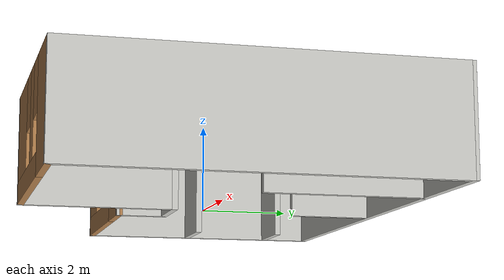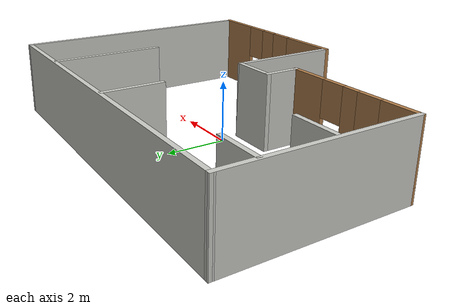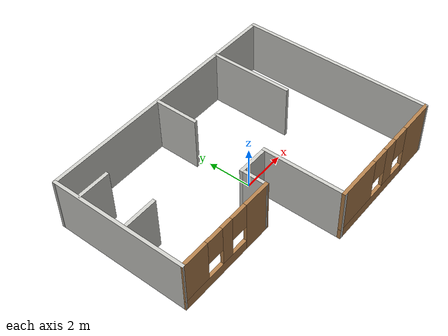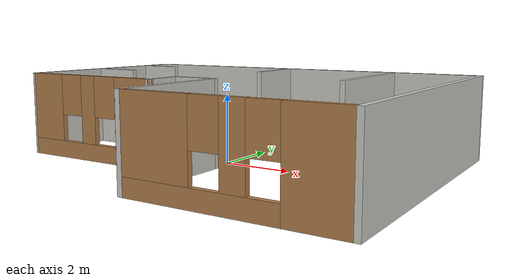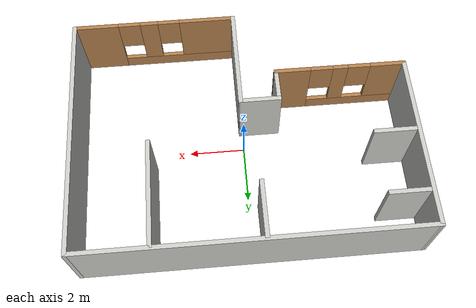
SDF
<?xml version='1.0'?>
<sdf version='1.6'>
  <model name='Building'>
    <link name='Wall_26'>
      <pose frame=''>-0.000176 4.29996 0 0 0 -0.000586</pose>
      <self_collide>0</self_collide>
      <kinematic>0</kinematic>
      <visual name='Wall_26_Visual'>
        <pose frame=''>0 0 1.25 0 -0 0</pose>
        <geometry>
          <box>
            <size>11.9548 0.15 2.5</size>
          </box>
        </geometry>
        <material>
          <script>
            <uri>file://media/materials/scripts/gazebo.material</uri>
            <name>Gazebo/CeilingTiled</name>
          </script>
          <ambient>1 1 1 1</ambient>
          <shader type='pixel'/>
          <diffuse>1 1 1 1</diffuse>
          <specular>0 0 0 1</specular>
          <emissive>0 0 0 1</emissive>
        </material>
        <meta>
          <layer>0</layer>
        </meta>
        <transparency>0</transparency>
        <cast_shadows>1</cast_shadows>
      </visual>
      <collision name='Wall_26_Collision'>
        <laser_retro>0</laser_retro>
        <max_contacts>10</max_contacts>
        <pose frame=''>0 0 1.25 0 -0 0</pose>
        <geometry>
          <box>
            <size>11.9548 0.15 2.5</size>
          </box>
        </geometry>
        <surface>
          <friction>
            <ode>
              <mu>1</mu>
              <mu2>1</mu2>
              <fdir1>0 0 0</fdir1>
              <slip1>0</slip1>
              <slip2>0</slip2>
            </ode>
            <torsional>
              <coefficient>1</coefficient>
              <patch_radius>0</patch_radius>
              <surface_radius>0</surface_radius>
              <use_patch_radius>1</use_patch_radius>
              <ode>
                <slip>0</slip>
              </ode>
            </torsional>
          </friction>
          <bounce>
            <restitution_coefficient>0</restitution_coefficient>
            <threshold>1e+06</threshold>
          </bounce>
          <contact>
            <collide_without_contact>0</collide_without_contact>
            <collide_without_contact_bitmask>1</collide_without_contact_bitmask>
            <collide_bitmask>1</collide_bitmask>
            <ode>
              <soft_cfm>0</soft_cfm>
              <soft_erp>0.2</soft_erp>
              <kp>1e+13</kp>
              <kd>1</kd>
              <max_vel>0.01</max_vel>
              <min_depth>0</min_depth>
            </ode>
            <bullet>
              <split_impulse>1</split_impulse>
              <split_impulse_penetration_threshold>-0.01</split_impulse_penetration_threshold>
              <soft_cfm>0</soft_cfm>
              <soft_erp>0.2</soft_erp>
              <kp>1e+13</kp>
              <kd>1</kd>
            </bullet>
          </contact>
        </surface>
      </collision>
    </link>
    <link name='Wall_27'>
      <pose frame=''>5.90246 -0.003458 0 0 0 -1.57074</pose>
      <self_collide>0</self_collide>
      <kinematic>0</kinematic>
      <visual name='Wall_27_Visual'>
        <pose frame=''>0 0 1.25 0 -0 0</pose>
        <geometry>
          <box>
            <size>8.75 0.15 2.5</size>
          </box>
        </geometry>
        <material>
          <script>
            <uri>file://media/materials/scripts/gazebo.material</uri>
            <name>Gazebo/CeilingTiled</name>
          </script>
          <ambient>1 1 1 1</ambient>
          <shader type='pixel'/>
          <diffuse>1 1 1 1</diffuse>
          <specular>0 0 0 1</specular>
          <emissive>0 0 0 1</emissive>
        </material>
        <meta>
          <layer>0</layer>
        </meta>
        <transparency>0</transparency>
        <cast_shadows>1</cast_shadows>
      </visual>
      <collision name='Wall_27_Collision'>
        <laser_retro>0</laser_retro>
        <max_contacts>10</max_contacts>
        <pose frame=''>0 0 1.25 0 -0 0</pose>
        <geometry>
          <box>
            <size>8.75 0.15 2.5</size>
          </box>
        </geometry>
        <surface>
          <friction>
            <ode>
              <mu>1</mu>
              <mu2>1</mu2>
              <fdir1>0 0 0</fdir1>
              <slip1>0</slip1>
              <slip2>0</slip2>
            </ode>
            <torsional>
              <coefficient>1</coefficient>
              <patch_radius>0</patch_radius>
              <surface_radius>0</surface_radius>
              <use_patch_radius>1</use_patch_radius>
              <ode>
                <slip>0</slip>
              </ode>
            </torsional>
          </friction>
          <bounce>
            <restitution_coefficient>0</restitution_coefficient>
            <threshold>1e+06</threshold>
          </bounce>
          <contact>
            <collide_without_contact>0</collide_without_contact>
            <collide_without_contact_bitmask>1</collide_without_contact_bitmask>
            <collide_bitmask>1</collide_bitmask>
            <ode>
              <soft_cfm>0</soft_cfm>
              <soft_erp>0.2</soft_erp>
              <kp>1e+13</kp>
              <kd>1</kd>
              <max_vel>0.01</max_vel>
              <min_depth>0</min_depth>
            </ode>
            <bullet>
              <split_impulse>1</split_impulse>
              <split_impulse_penetration_threshold>-0.01</split_impulse_penetration_threshold>
              <soft_cfm>0</soft_cfm>
              <soft_erp>0.2</soft_erp>
              <kp>1e+13</kp>
              <kd>1</kd>
            </bullet>
          </contact>
        </surface>
      </collision>
    </link>
    <link name='Wall_28'>
      <pose frame=''>2.97769 -4.30342 0 0 -0 3.14159</pose>
      <self_collide>0</self_collide>
      <kinematic>0</kinematic>
      <visual name='Wall_28_Visual_0'>
        <pose frame=''>-2.16132 0 1.25 0 -0 0</pose>
        <geometry>
          <box>
            <size>1.67735 0.15 2.5</size>
          </box>
        </geometry>
        <material>
          <script>
            <uri>file://media/materials/scripts/gazebo.material</uri>
            <name>Gazebo/Wood</name>
          </script>
          <ambient>1 1 1 1</ambient>
          <shader type='pixel'/>
          <diffuse>1 1 1 1</diffuse>
          <specular>0.2 0.2 0.2 1</specular>
          <emissive>0 0 0 1</emissive>
        </material>
        <meta>
          <layer>0</layer>
        </meta>
        <transparency>0</transparency>
        <cast_shadows>1</cast_shadows>
      </visual>
      <visual name='Wall_28_Visual_1'>
        <pose frame=''>0.838676 0 0.25 0 -0 0</pose>
        <geometry>
          <box>
            <size>4.32265 0.15 0.5</size>
          </box>
        </geometry>
        <material>
          <script>
            <uri>file://media/materials/scripts/gazebo.material</uri>
            <name>Gazebo/Wood</name>
          </script>
          <ambient>1 1 1 1</ambient>
          <shader type='pixel'/>
          <diffuse>1 1 1 1</diffuse>
          <specular>0.2 0.2 0.2 1</specular>
          <emissive>0 0 0 1</emissive>
        </material>
        <meta>
          <layer>0</layer>
        </meta>
        <transparency>0</transparency>
        <cast_shadows>1</cast_shadows>
      </visual>
      <visual name='Wall_28_Visual_2'>
        <pose frame=''>-0.194936 0 1.5 0 -0 0</pose>
        <geometry>
          <box>
            <size>0.655424 0.15 2</size>
          </box>
        </geometry>
        <material>
          <script>
            <uri>file://media/materials/scripts/gazebo.material</uri>
            <name>Gazebo/Wood</name>
          </script>
          <ambient>1 1 1 1</ambient>
          <shader type='pixel'/>
          <diffuse>1 1 1 1</diffuse>
          <specular>0.2 0.2 0.2 1</specular>
          <emissive>0 0 0 1</emissive>
        </material>
        <meta>
          <layer>0</layer>
        </meta>
        <transparency>0</transparency>
        <cast_shadows>1</cast_shadows>
      </visual>
      <visual name='Wall_28_Visual_3'>
        <pose frame=''>1.96639 0 1.5 0 -0 0</pose>
        <geometry>
          <box>
            <size>2.06722 0.15 2</size>
          </box>
        </geometry>
        <material>
          <script>
            <uri>file://media/materials/scripts/gazebo.material</uri>
            <name>Gazebo/Wood</name>
          </script>
          <ambient>1 1 1 1</ambient>
          <shader type='pixel'/>
          <diffuse>1 1 1 1</diffuse>
          <specular>0.2 0.2 0.2 1</specular>
          <emissive>0 0 0 1</emissive>
        </material>
        <meta>
          <layer>0</layer>
        </meta>
        <transparency>0</transparency>
        <cast_shadows>1</cast_shadows>
      </visual>
      <visual name='Wall_28_Visual_4'>
        <pose frame=''>-0.922648 0 1.9 0 -0 0</pose>
        <geometry>
          <box>
            <size>0.8 0.15 1.2</size>
          </box>
        </geometry>
        <material>
          <script>
            <uri>file://media/materials/scripts/gazebo.material</uri>
            <name>Gazebo/Wood</name>
          </script>
          <ambient>1 1 1 1</ambient>
          <shader type='pixel'/>
          <diffuse>1 1 1 1</diffuse>
          <specular>0.2 0.2 0.2 1</specular>
          <emissive>0 0 0 1</emissive>
        </material>
        <meta>
          <layer>0</layer>
        </meta>
        <transparency>0</transparency>
        <cast_shadows>1</cast_shadows>
      </visual>
      <visual name='Wall_28_Visual_5'>
        <pose frame=''>0.532776 0 1.9 0 -0 0</pose>
        <geometry>
          <box>
            <size>0.8 0.15 1.2</size>
          </box>
        </geometry>
        <material>
          <script>
            <uri>file://media/materials/scripts/gazebo.material</uri>
            <name>Gazebo/Wood</name>
          </script>
          <ambient>1 1 1 1</ambient>
          <shader type='pixel'/>
          <diffuse>1 1 1 1</diffuse>
          <specular>0.2 0.2 0.2 1</specular>
          <emissive>0 0 0 1</emissive>
        </material>
        <meta>
          <layer>0</layer>
        </meta>
        <transparency>0</transparency>
        <cast_shadows>1</cast_shadows>
      </visual>
      <collision name='Wall_28_Collision_0'>
        <laser_retro>0</laser_retro>
        <max_contacts>10</max_contacts>
        <pose frame=''>-2.16132 0 1.25 0 -0 0</pose>
        <geometry>
          <box>
            <size>1.67735 0.15 2.5</size>
          </box>
        </geometry>
        <surface>
          <friction>
            <ode>
              <mu>1</mu>
              <mu2>1</mu2>
              <fdir1>0 0 0</fdir1>
              <slip1>0</slip1>
              <slip2>0</slip2>
            </ode>
            <torsional>
              <coefficient>1</coefficient>
              <patch_radius>0</patch_radius>
              <surface_radius>0</surface_radius>
              <use_patch_radius>1</use_patch_radius>
              <ode>
                <slip>0</slip>
              </ode>
            </torsional>
          </friction>
          <bounce>
            <restitution_coefficient>0</restitution_coefficient>
            <threshold>1e+06</threshold>
          </bounce>
          <contact>
            <collide_without_contact>0</collide_without_contact>
            <collide_without_contact_bitmask>1</collide_without_contact_bitmask>
            <collide_bitmask>1</collide_bitmask>
            <ode>
              <soft_cfm>0</soft_cfm>
              <soft_erp>0.2</soft_erp>
              <kp>1e+13</kp>
              <kd>1</kd>
              <max_vel>0.01</max_vel>
              <min_depth>0</min_depth>
            </ode>
            <bullet>
              <split_impulse>1</split_impulse>
              <split_impulse_penetration_threshold>-0.01</split_impulse_penetration_threshold>
              <soft_cfm>0</soft_cfm>
              <soft_erp>0.2</soft_erp>
              <kp>1e+13</kp>
              <kd>1</kd>
            </bullet>
          </contact>
        </surface>
      </collision>
      <collision name='Wall_28_Collision_1'>
        <laser_retro>0</laser_retro>
        <max_contacts>10</max_contacts>
        <pose frame=''>0.838676 0 0.25 0 -0 0</pose>
        <geometry>
          <box>
            <size>4.32265 0.15 0.5</size>
          </box>
        </geometry>
        <surface>
          <friction>
            <ode>
              <mu>1</mu>
              <mu2>1</mu2>
              <fdir1>0 0 0</fdir1>
              <slip1>0</slip1>
              <slip2>0</slip2>
            </ode>
            <torsional>
              <coefficient>1</coefficient>
              <patch_radius>0</patch_radius>
              <surface_radius>0</surface_radius>
              <use_patch_radius>1</use_patch_radius>
              <ode>
                <slip>0</slip>
              </ode>
            </torsional>
          </friction>
          <bounce>
            <restitution_coefficient>0</restitution_coefficient>
            <threshold>1e+06</threshold>
          </bounce>
          <contact>
            <collide_without_contact>0</collide_without_contact>
            <collide_without_contact_bitmask>1</collide_without_contact_bitmask>
            <collide_bitmask>1</collide_bitmask>
            <ode>
              <soft_cfm>0</soft_cfm>
              <soft_erp>0.2</soft_erp>
              <kp>1e+13</kp>
              <kd>1</kd>
              <max_vel>0.01</max_vel>
              <min_depth>0</min_depth>
            </ode>
            <bullet>
              <split_impulse>1</split_impulse>
              <split_impulse_penetration_threshold>-0.01</split_impulse_penetration_threshold>
              <soft_cfm>0</soft_cfm>
              <soft_erp>0.2</soft_erp>
              <kp>1e+13</kp>
              <kd>1</kd>
            </bullet>
          </contact>
        </surface>
      </collision>
      <collision name='Wall_28_Collision_3'>
        <laser_retro>0</laser_retro>
        <max_contacts>10</max_contacts>
        <pose frame=''>1.96639 0 1.5 0 -0 0</pose>
        <geometry>
          <box>
            <size>2.06722 0.15 2</size>
          </box>
        </geometry>
        <surface>
          <friction>
            <ode>
              <mu>1</mu>
              <mu2>1</mu2>
              <fdir1>0 0 0</fdir1>
              <slip1>0</slip1>
              <slip2>0</slip2>
            </ode>
            <torsional>
              <coefficient>1</coefficient>
              <patch_radius>0</patch_radius>
              <surface_radius>0</surface_radius>
              <use_patch_radius>1</use_patch_radius>
              <ode>
                <slip>0</slip>
              </ode>
            </torsional>
          </friction>
          <bounce>
            <restitution_coefficient>0</restitution_coefficient>
            <threshold>1e+06</threshold>
          </bounce>
          <contact>
            <collide_without_contact>0</collide_without_contact>
            <collide_without_contact_bitmask>1</collide_without_contact_bitmask>
            <collide_bitmask>1</collide_bitmask>
            <ode>
              <soft_cfm>0</soft_cfm>
              <soft_erp>0.2</soft_erp>
              <kp>1e+13</kp>
              <kd>1</kd>
              <max_vel>0.01</max_vel>
              <min_depth>0</min_depth>
            </ode>
            <bullet>
              <split_impulse>1</split_impulse>
              <split_impulse_penetration_threshold>-0.01</split_impulse_penetration_threshold>
              <soft_cfm>0</soft_cfm>
              <soft_erp>0.2</soft_erp>
              <kp>1e+13</kp>
              <kd>1</kd>
            </bullet>
          </contact>
        </surface>
      </collision>
      <collision name='Wall_28_Collision_2'>
        <laser_retro>0</laser_retro>
        <max_contacts>10</max_contacts>
        <pose frame=''>-0.194936 0 1.5 0 -0 0</pose>
        <geometry>
          <box>
            <size>0.655424 0.15 2</size>
          </box>
        </geometry>
        <surface>
          <friction>
            <ode>
              <mu>1</mu>
              <mu2>1</mu2>
              <fdir1>0 0 0</fdir1>
              <slip1>0</slip1>
              <slip2>0</slip2>
            </ode>
            <torsional>
              <coefficient>1</coefficient>
              <patch_radius>0</patch_radius>
              <surface_radius>0</surface_radius>
              <use_patch_radius>1</use_patch_radius>
              <ode>
                <slip>0</slip>
              </ode>
            </torsional>
          </friction>
          <bounce>
            <restitution_coefficient>0</restitution_coefficient>
            <threshold>1e+06</threshold>
          </bounce>
          <contact>
            <collide_without_contact>0</collide_without_contact>
            <collide_without_contact_bitmask>1</collide_without_contact_bitmask>
            <collide_bitmask>1</collide_bitmask>
            <ode>
              <soft_cfm>0</soft_cfm>
              <soft_erp>0.2</soft_erp>
              <kp>1e+13</kp>
              <kd>1</kd>
              <max_vel>0.01</max_vel>
              <min_depth>0</min_depth>
            </ode>
            <bullet>
              <split_impulse>1</split_impulse>
              <split_impulse_penetration_threshold>-0.01</split_impulse_penetration_threshold>
              <soft_cfm>0</soft_cfm>
              <soft_erp>0.2</soft_erp>
              <kp>1e+13</kp>
              <kd>1</kd>
            </bullet>
          </contact>
        </surface>
      </collision>
      <collision name='Wall_28_Collision_4'>
        <laser_retro>0</laser_retro>
        <max_contacts>10</max_contacts>
        <pose frame=''>-0.922648 0 1.9 0 -0 0</pose>
        <geometry>
          <box>
            <size>0.8 0.15 1.2</size>
          </box>
        </geometry>
        <surface>
          <friction>
            <ode>
              <mu>1</mu>
              <mu2>1</mu2>
              <fdir1>0 0 0</fdir1>
              <slip1>0</slip1>
              <slip2>0</slip2>
            </ode>
            <torsional>
              <coefficient>1</coefficient>
              <patch_radius>0</patch_radius>
              <surface_radius>0</surface_radius>
              <use_patch_radius>1</use_patch_radius>
              <ode>
                <slip>0</slip>
              </ode>
            </torsional>
          </friction>
          <bounce>
            <restitution_coefficient>0</restitution_coefficient>
            <threshold>1e+06</threshold>
          </bounce>
          <contact>
            <collide_without_contact>0</collide_without_contact>
            <collide_without_contact_bitmask>1</collide_without_contact_bitmask>
            <collide_bitmask>1</collide_bitmask>
            <ode>
              <soft_cfm>0</soft_cfm>
              <soft_erp>0.2</soft_erp>
              <kp>1e+13</kp>
              <kd>1</kd>
              <max_vel>0.01</max_vel>
              <min_depth>0</min_depth>
            </ode>
            <bullet>
              <split_impulse>1</split_impulse>
              <split_impulse_penetration_threshold>-0.01</split_impulse_penetration_threshold>
              <soft_cfm>0</soft_cfm>
              <soft_erp>0.2</soft_erp>
              <kp>1e+13</kp>
              <kd>1</kd>
            </bullet>
          </contact>
        </surface>
      </collision>
      <collision name='Wall_28_Collision_5'>
        <laser_retro>0</laser_retro>
        <max_contacts>10</max_contacts>
        <pose frame=''>0.532776 0 1.9 0 -0 0</pose>
        <geometry>
          <box>
            <size>0.8 0.15 1.2</size>
          </box>
        </geometry>
        <surface>
          <friction>
            <ode>
              <mu>1</mu>
              <mu2>1</mu2>
              <fdir1>0 0 0</fdir1>
              <slip1>0</slip1>
              <slip2>0</slip2>
            </ode>
            <torsional>
              <coefficient>1</coefficient>
              <patch_radius>0</patch_radius>
              <surface_radius>0</surface_radius>
              <use_patch_radius>1</use_patch_radius>
              <ode>
                <slip>0</slip>
              </ode>
            </torsional>
          </friction>
          <bounce>
            <restitution_coefficient>0</restitution_coefficient>
            <threshold>1e+06</threshold>
          </bounce>
          <contact>
            <collide_without_contact>0</collide_without_contact>
            <collide_without_contact_bitmask>1</collide_without_contact_bitmask>
            <collide_bitmask>1</collide_bitmask>
            <ode>
              <soft_cfm>0</soft_cfm>
              <soft_erp>0.2</soft_erp>
              <kp>1e+13</kp>
              <kd>1</kd>
              <max_vel>0.01</max_vel>
              <min_depth>0</min_depth>
            </ode>
            <bullet>
              <split_impulse>1</split_impulse>
              <split_impulse_penetration_threshold>-0.01</split_impulse_penetration_threshold>
              <soft_cfm>0</soft_cfm>
              <soft_erp>0.2</soft_erp>
              <kp>1e+13</kp>
              <kd>1</kd>
            </bullet>
          </contact>
        </surface>
      </collision>
    </link>
    <link name='Wall_29'>
      <pose frame=''>0.052686 -2.50342 0 0 -0 1.5708</pose>
      <self_collide>0</self_collide>
      <kinematic>0</kinematic>
      <visual name='Wall_29_Visual'>
        <pose frame=''>0 0 1.25 0 -0 0</pose>
        <geometry>
          <box>
            <size>3.75 0.15 2.5</size>
          </box>
        </geometry>
        <material>
          <script>
            <uri>file://media/materials/scripts/gazebo.material</uri>
            <name>Gazebo/CeilingTiled</name>
          </script>
          <ambient>1 1 1 1</ambient>
          <shader type='pixel'/>
          <diffuse>1 1 1 1</diffuse>
          <specular>0 0 0 1</specular>
          <emissive>0 0 0 1</emissive>
        </material>
        <meta>
          <layer>0</layer>
        </meta>
        <transparency>0</transparency>
        <cast_shadows>1</cast_shadows>
      </visual>
      <collision name='Wall_29_Collision'>
        <laser_retro>0</laser_retro>
        <max_contacts>10</max_contacts>
        <pose frame=''>0 0 1.25 0 -0 0</pose>
        <geometry>
          <box>
            <size>3.75 0.15 2.5</size>
          </box>
        </geometry>
        <surface>
          <friction>
            <ode>
              <mu>1</mu>
              <mu2>1</mu2>
              <fdir1>0 0 0</fdir1>
              <slip1>0</slip1>
              <slip2>0</slip2>
            </ode>
            <torsional>
              <coefficient>1</coefficient>
              <patch_radius>0</patch_radius>
              <surface_radius>0</surface_radius>
              <use_patch_radius>1</use_patch_radius>
              <ode>
                <slip>0</slip>
              </ode>
            </torsional>
          </friction>
          <bounce>
            <restitution_coefficient>0</restitution_coefficient>
            <threshold>1e+06</threshold>
          </bounce>
          <contact>
            <collide_without_contact>0</collide_without_contact>
            <collide_without_contact_bitmask>1</collide_without_contact_bitmask>
            <collide_bitmask>1</collide_bitmask>
            <ode>
              <soft_cfm>0</soft_cfm>
              <soft_erp>0.2</soft_erp>
              <kp>1e+13</kp>
              <kd>1</kd>
              <max_vel>0.01</max_vel>
              <min_depth>0</min_depth>
            </ode>
            <bullet>
              <split_impulse>1</split_impulse>
              <split_impulse_penetration_threshold>-0.01</split_impulse_penetration_threshold>
              <soft_cfm>0</soft_cfm>
              <soft_erp>0.2</soft_erp>
              <kp>1e+13</kp>
              <kd>1</kd>
            </bullet>
          </contact>
        </surface>
      </collision>
    </link>
    <link name='Wall_29_clone'>
      <pose frame=''>3.29377 2.43473 0 0 -0 1.5708</pose>
      <self_collide>0</self_collide>
      <kinematic>0</kinematic>
      <visual name='Wall_29_Visual'>
        <pose frame=''>0 0 1.25 0 -0 0</pose>
        <geometry>
          <box>
            <size>3.75 0.15 2.5</size>
          </box>
        </geometry>
        <material>
          <script>
            <uri>file://media/materials/scripts/gazebo.material</uri>
            <name>Gazebo/CeilingTiled</name>
          </script>
          <ambient>1 1 1 1</ambient>
          <shader type='pixel'/>
          <diffuse>1 1 1 1</diffuse>
          <specular>0 0 0 1</specular>
          <emissive>0 0 0 1</emissive>
        </material>
        <meta>
          <layer>0</layer>
        </meta>
        <transparency>0</transparency>
        <cast_shadows>1</cast_shadows>
      </visual>
      <collision name='Wall_29_Collision'>
        <laser_retro>0</laser_retro>
        <max_contacts>10</max_contacts>
        <pose frame=''>0 0 1.25 0 -0 0</pose>
        <geometry>
          <box>
            <size>3.75 0.15 2.5</size>
          </box>
        </geometry>
        <surface>
          <friction>
            <ode>
              <mu>1</mu>
              <mu2>1</mu2>
              <fdir1>0 0 0</fdir1>
              <slip1>0</slip1>
              <slip2>0</slip2>
            </ode>
            <torsional>
              <coefficient>1</coefficient>
              <patch_radius>0</patch_radius>
              <surface_radius>0</surface_radius>
              <use_patch_radius>1</use_patch_radius>
              <ode>
                <slip>0</slip>
              </ode>
            </torsional>
          </friction>
          <bounce>
            <restitution_coefficient>0</restitution_coefficient>
            <threshold>1e+06</threshold>
          </bounce>
          <contact>
            <collide_without_contact>0</collide_without_contact>
            <collide_without_contact_bitmask>1</collide_without_contact_bitmask>
            <collide_bitmask>1</collide_bitmask>
            <ode>
              <soft_cfm>0</soft_cfm>
              <soft_erp>0.2</soft_erp>
              <kp>1e+13</kp>
              <kd>1</kd>
              <max_vel>0.01</max_vel>
              <min_depth>0</min_depth>
            </ode>
            <bullet>
              <split_impulse>1</split_impulse>
              <split_impulse_penetration_threshold>-0.01</split_impulse_penetration_threshold>
              <soft_cfm>0</soft_cfm>
              <soft_erp>0.2</soft_erp>
              <kp>1e+13</kp>
              <kd>1</kd>
            </bullet>
          </contact>
        </surface>
      </collision>
    </link>
    <link name='Wall_29_clone_clone'>
      <pose frame=''>-0.384096 3.3 0 0 -0 1.5708</pose>
      <self_collide>0</self_collide>
      <kinematic>0</kinematic>
      <gravity>1</gravity>
      <inertial>
        <mass>1</mass>
        <pose frame=''>0 0 0 0 -0 0</pose>
        <inertia>
          <ixx>1</ixx>
          <ixy>0</ixy>
          <ixz>0</ixz>
          <iyy>1</iyy>
          <iyz>0</iyz>
          <izz>1</izz>
        </inertia>
      </inertial>
      <visual name='Wall_29_Visual'>
        <pose frame=''>0 0 1.25 0 -0 0</pose>
        <geometry>
          <box>
            <size>2 0.15 2.5</size>
          </box>
        </geometry>
        <material>
          <script>
            <uri>file://media/materials/scripts/gazebo.material</uri>
            <name>Gazebo/CeilingTiled</name>
          </script>
          <ambient>1 1 1 1</ambient>
          <shader type='pixel'>
            <normal_map>__default__</normal_map>
          </shader>
          <diffuse>1 1 1 1</diffuse>
          <specular>0 0 0 1</specular>
          <emissive>0 0 0 1</emissive>
        </material>
        <meta>
          <layer>0</layer>
        </meta>
        <transparency>0</transparency>
        <cast_shadows>1</cast_shadows>
      </visual>
      <collision name='Wall_29_Collision'>
        <laser_retro>0</laser_retro>
        <max_contacts>10</max_contacts>
        <pose frame=''>0 0 1.25 0 -0 0</pose>
        <geometry>
          <box>
            <size>2 0.15 2.5</size>
          </box>
        </geometry>
        <surface>
          <friction>
            <ode>
              <mu>1</mu>
              <mu2>1</mu2>
              <fdir1>0 0 0</fdir1>
              <slip1>0</slip1>
              <slip2>0</slip2>
            </ode>
            <torsional>
              <coefficient>1</coefficient>
              <patch_radius>0</patch_radius>
              <surface_radius>0</surface_radius>
              <use_patch_radius>1</use_patch_radius>
              <ode>
                <slip>0</slip>
              </ode>
            </torsional>
          </friction>
          <bounce>
            <restitution_coefficient>0</restitution_coefficient>
            <threshold>1e+06</threshold>
          </bounce>
          <contact>
            <collide_without_contact>0</collide_without_contact>
            <collide_without_contact_bitmask>1</collide_without_contact_bitmask>
            <collide_bitmask>1</collide_bitmask>
            <ode>
              <soft_cfm>0</soft_cfm>
              <soft_erp>0.2</soft_erp>
              <kp>1e+13</kp>
              <kd>1</kd>
              <max_vel>0.01</max_vel>
              <min_depth>0</min_depth>
            </ode>
            <bullet>
              <split_impulse>1</split_impulse>
              <split_impulse_penetration_threshold>-0.01</split_impulse_penetration_threshold>
              <soft_cfm>0</soft_cfm>
              <soft_erp>0.2</soft_erp>
              <kp>1e+13</kp>
              <kd>1</kd>
            </bullet>
          </contact>
        </surface>
      </collision>
    </link>
    <link name='Wall_30'>
      <pose frame=''>-0.622313 -0.703418 0 0 -0 3.14159</pose>
      <self_collide>0</self_collide>
      <kinematic>0</kinematic>
      <visual name='Wall_30_Visual'>
        <pose frame=''>0 0 1.25 0 -0 0</pose>
        <geometry>
          <box>
            <size>1.5 0.15 2.5</size>
          </box>
        </geometry>
        <material>
          <script>
            <uri>file://media/materials/scripts/gazebo.material</uri>
            <name>Gazebo/CeilingTiled</name>
          </script>
          <ambient>1 1 1 1</ambient>
          <shader type='pixel'/>
          <diffuse>1 1 1 1</diffuse>
          <specular>0 0 0 1</specular>
          <emissive>0 0 0 1</emissive>
        </material>
        <meta>
          <layer>0</layer>
        </meta>
        <transparency>0</transparency>
        <cast_shadows>1</cast_shadows>
      </visual>
      <collision name='Wall_30_Collision'>
        <laser_retro>0</laser_retro>
        <max_contacts>10</max_contacts>
        <pose frame=''>0 0 1.25 0 -0 0</pose>
        <geometry>
          <box>
            <size>1.5 0.15 2.5</size>
          </box>
        </geometry>
        <surface>
          <friction>
            <ode>
              <mu>1</mu>
              <mu2>1</mu2>
              <fdir1>0 0 0</fdir1>
              <slip1>0</slip1>
              <slip2>0</slip2>
            </ode>
            <torsional>
              <coefficient>1</coefficient>
              <patch_radius>0</patch_radius>
              <surface_radius>0</surface_radius>
              <use_patch_radius>1</use_patch_radius>
              <ode>
                <slip>0</slip>
              </ode>
            </torsional>
          </friction>
          <bounce>
            <restitution_coefficient>0</restitution_coefficient>
            <threshold>1e+06</threshold>
          </bounce>
          <contact>
            <collide_without_contact>0</collide_without_contact>
            <collide_without_contact_bitmask>1</collide_without_contact_bitmask>
            <collide_bitmask>1</collide_bitmask>
            <ode>
              <soft_cfm>0</soft_cfm>
              <soft_erp>0.2</soft_erp>
              <kp>1e+13</kp>
              <kd>1</kd>
              <max_vel>0.01</max_vel>
              <min_depth>0</min_depth>
            </ode>
            <bullet>
              <split_impulse>1</split_impulse>
              <split_impulse_penetration_threshold>-0.01</split_impulse_penetration_threshold>
              <soft_cfm>0</soft_cfm>
              <soft_erp>0.2</soft_erp>
              <kp>1e+13</kp>
              <kd>1</kd>
            </bullet>
          </contact>
        </surface>
      </collision>
    </link>
    <link name='Wall_30_clone'>
      <pose frame=''>-5.08821 0.870186 0 0 -0 3.14159</pose>
      <self_collide>0</self_collide>
      <kinematic>0</kinematic>
      <visual name='Wall_30_Visual'>
        <pose frame=''>0 0 1.25 0 -0 0</pose>
        <geometry>
          <box>
            <size>1.5 0.15 2.5</size>
          </box>
        </geometry>
        <material>
          <script>
            <uri>file://media/materials/scripts/gazebo.material</uri>
            <name>Gazebo/CeilingTiled</name>
          </script>
          <ambient>1 1 1 1</ambient>
          <shader type='pixel'/>
          <diffuse>1 1 1 1</diffuse>
          <specular>0 0 0 1</specular>
          <emissive>0 0 0 1</emissive>
        </material>
        <meta>
          <layer>0</layer>
        </meta>
        <transparency>0</transparency>
        <cast_shadows>1</cast_shadows>
      </visual>
      <collision name='Wall_30_Collision'>
        <laser_retro>0</laser_retro>
        <max_contacts>10</max_contacts>
        <pose frame=''>0 0 1.25 0 -0 0</pose>
        <geometry>
          <box>
            <size>1.5 0.15 2.5</size>
          </box>
        </geometry>
        <surface>
          <friction>
            <ode>
              <mu>1</mu>
              <mu2>1</mu2>
              <fdir1>0 0 0</fdir1>
              <slip1>0</slip1>
              <slip2>0</slip2>
            </ode>
            <torsional>
              <coefficient>1</coefficient>
              <patch_radius>0</patch_radius>
              <surface_radius>0</surface_radius>
              <use_patch_radius>1</use_patch_radius>
              <ode>
                <slip>0</slip>
              </ode>
            </torsional>
          </friction>
          <bounce>
            <restitution_coefficient>0</restitution_coefficient>
            <threshold>1e+06</threshold>
          </bounce>
          <contact>
            <collide_without_contact>0</collide_without_contact>
            <collide_without_contact_bitmask>1</collide_without_contact_bitmask>
            <collide_bitmask>1</collide_bitmask>
            <ode>
              <soft_cfm>0</soft_cfm>
              <soft_erp>0.2</soft_erp>
              <kp>1e+13</kp>
              <kd>1</kd>
              <max_vel>0.01</max_vel>
              <min_depth>0</min_depth>
            </ode>
            <bullet>
              <split_impulse>1</split_impulse>
              <split_impulse_penetration_threshold>-0.01</split_impulse_penetration_threshold>
              <soft_cfm>0</soft_cfm>
              <soft_erp>0.2</soft_erp>
              <kp>1e+13</kp>
              <kd>1</kd>
            </bullet>
          </contact>
        </surface>
      </collision>
    </link>
    <link name='Wall_30_clone_clone'>
      <pose frame=''>-5.16149 3.11051 0 0 -0 3.14159</pose>
      <self_collide>0</self_collide>
      <kinematic>0</kinematic>
      <visual name='Wall_30_Visual'>
        <pose frame=''>0 0 1.25 0 -0 0</pose>
        <geometry>
          <box>
            <size>1.5 0.15 2.5</size>
          </box>
        </geometry>
        <material>
          <script>
            <uri>file://media/materials/scripts/gazebo.material</uri>
            <name>Gazebo/CeilingTiled</name>
          </script>
          <ambient>1 1 1 1</ambient>
          <shader type='pixel'/>
          <diffuse>1 1 1 1</diffuse>
          <specular>0 0 0 1</specular>
          <emissive>0 0 0 1</emissive>
        </material>
        <meta>
          <layer>0</layer>
        </meta>
        <transparency>0</transparency>
        <cast_shadows>1</cast_shadows>
      </visual>
      <collision name='Wall_30_Collision'>
        <laser_retro>0</laser_retro>
        <max_contacts>10</max_contacts>
        <pose frame=''>0 0 1.25 0 -0 0</pose>
        <geometry>
          <box>
            <size>1.5 0.15 2.5</size>
          </box>
        </geometry>
        <surface>
          <friction>
            <ode>
              <mu>1</mu>
              <mu2>1</mu2>
              <fdir1>0 0 0</fdir1>
              <slip1>0</slip1>
              <slip2>0</slip2>
            </ode>
            <torsional>
              <coefficient>1</coefficient>
              <patch_radius>0</patch_radius>
              <surface_radius>0</surface_radius>
              <use_patch_radius>1</use_patch_radius>
              <ode>
                <slip>0</slip>
              </ode>
            </torsional>
          </friction>
          <bounce>
            <restitution_coefficient>0</restitution_coefficient>
            <threshold>1e+06</threshold>
          </bounce>
          <contact>
            <collide_without_contact>0</collide_without_contact>
            <collide_without_contact_bitmask>1</collide_without_contact_bitmask>
            <collide_bitmask>1</collide_bitmask>
            <ode>
              <soft_cfm>0</soft_cfm>
              <soft_erp>0.2</soft_erp>
              <kp>1e+13</kp>
              <kd>1</kd>
              <max_vel>0.01</max_vel>
              <min_depth>0</min_depth>
            </ode>
            <bullet>
              <split_impulse>1</split_impulse>
              <split_impulse_penetration_threshold>-0.01</split_impulse_penetration_threshold>
              <soft_cfm>0</soft_cfm>
              <soft_erp>0.2</soft_erp>
              <kp>1e+13</kp>
              <kd>1</kd>
            </bullet>
          </contact>
        </surface>
      </collision>
    </link>
    <link name='Wall_31'>
      <pose frame=''>-1.29731 -1.25342 0 0 0 -1.5708</pose>
      <self_collide>0</self_collide>
      <kinematic>0</kinematic>
      <visual name='Wall_31_Visual'>
        <pose frame=''>0 0 1.25 0 -0 0</pose>
        <geometry>
          <box>
            <size>1.25 0.15 2.5</size>
          </box>
        </geometry>
        <material>
          <script>
            <uri>file://media/materials/scripts/gazebo.material</uri>
            <name>Gazebo/CeilingTiled</name>
          </script>
          <ambient>1 1 1 1</ambient>
          <shader type='pixel'/>
          <diffuse>1 1 1 1</diffuse>
          <specular>0 0 0 1</specular>
          <emissive>0 0 0 1</emissive>
        </material>
        <meta>
          <layer>0</layer>
        </meta>
        <transparency>0</transparency>
        <cast_shadows>1</cast_shadows>
      </visual>
      <collision name='Wall_31_Collision'>
        <laser_retro>0</laser_retro>
        <max_contacts>10</max_contacts>
        <pose frame=''>0 0 1.25 0 -0 0</pose>
        <geometry>
          <box>
            <size>1.25 0.15 2.5</size>
          </box>
        </geometry>
        <surface>
          <friction>
            <ode>
              <mu>1</mu>
              <mu2>1</mu2>
              <fdir1>0 0 0</fdir1>
              <slip1>0</slip1>
              <slip2>0</slip2>
            </ode>
            <torsional>
              <coefficient>1</coefficient>
              <patch_radius>0</patch_radius>
              <surface_radius>0</surface_radius>
              <use_patch_radius>1</use_patch_radius>
              <ode>
                <slip>0</slip>
              </ode>
            </torsional>
          </friction>
          <bounce>
            <restitution_coefficient>0</restitution_coefficient>
            <threshold>1e+06</threshold>
          </bounce>
          <contact>
            <collide_without_contact>0</collide_without_contact>
            <collide_without_contact_bitmask>1</collide_without_contact_bitmask>
            <collide_bitmask>1</collide_bitmask>
            <ode>
              <soft_cfm>0</soft_cfm>
              <soft_erp>0.2</soft_erp>
              <kp>1e+13</kp>
              <kd>1</kd>
              <max_vel>0.01</max_vel>
              <min_depth>0</min_depth>
            </ode>
            <bullet>
              <split_impulse>1</split_impulse>
              <split_impulse_penetration_threshold>-0.01</split_impulse_penetration_threshold>
              <soft_cfm>0</soft_cfm>
              <soft_erp>0.2</soft_erp>
              <kp>1e+13</kp>
              <kd>1</kd>
            </bullet>
          </contact>
        </surface>
      </collision>
    </link>
    <link name='Wall_32'>
      <pose frame=''>-3.59995 -1.8 0 0 -0 3.14011</pose>
      <self_collide>0</self_collide>
      <kinematic>0</kinematic>
      <visual name='Wall_32_Visual_0'>
        <pose frame=''>-1.71646 0 1.25 0 -0 0</pose>
        <geometry>
          <box>
            <size>1.32235 0.15 2.5</size>
          </box>
        </geometry>
        <material>
          <script>
            <uri>file://media/materials/scripts/gazebo.material</uri>
            <name>Gazebo/Wood</name>
          </script>
          <ambient>1 1 1 1</ambient>
          <shader type='pixel'/>
          <diffuse>1 1 1 1</diffuse>
          <specular>0.2 0.2 0.2 1</specular>
          <emissive>0 0 0 1</emissive>
        </material>
        <meta>
          <layer>0</layer>
        </meta>
        <transparency>0</transparency>
        <cast_shadows>1</cast_shadows>
      </visual>
      <visual name='Wall_32_Visual_1'>
        <pose frame=''>0.661177 0 0.25 0 -0 0</pose>
        <geometry>
          <box>
            <size>3.43291 0.15 0.5</size>
          </box>
        </geometry>
        <material>
          <script>
            <uri>file://media/materials/scripts/gazebo.material</uri>
            <name>Gazebo/Wood</name>
          </script>
          <ambient>1 1 1 1</ambient>
          <shader type='pixel'/>
          <diffuse>1 1 1 1</diffuse>
          <specular>0.2 0.2 0.2 1</specular>
          <emissive>0 0 0 1</emissive>
        </material>
        <meta>
          <layer>0</layer>
        </meta>
        <transparency>0</transparency>
        <cast_shadows>1</cast_shadows>
      </visual>
      <visual name='Wall_32_Visual_2'>
        <pose frame=''>0.015645 0 1.5 0 -0 0</pose>
        <geometry>
          <box>
            <size>0.541852 0.15 2</size>
          </box>
        </geometry>
        <material>
          <script>
            <uri>file://media/materials/scripts/gazebo.material</uri>
            <name>Gazebo/Wood</name>
          </script>
          <ambient>1 1 1 1</ambient>
          <shader type='pixel'/>
          <diffuse>1 1 1 1</diffuse>
          <specular>0.2 0.2 0.2 1</specular>
          <emissive>0 0 0 1</emissive>
        </material>
        <meta>
          <layer>0</layer>
        </meta>
        <transparency>0</transparency>
        <cast_shadows>1</cast_shadows>
      </visual>
      <visual name='Wall_32_Visual_3'>
        <pose frame=''>1.7321 0 1.5 0 -0 0</pose>
        <geometry>
          <box>
            <size>1.29106 0.15 2</size>
          </box>
        </geometry>
        <material>
          <script>
            <uri>file://media/materials/scripts/gazebo.material</uri>
            <name>Gazebo/Wood</name>
          </script>
          <ambient>1 1 1 1</ambient>
          <shader type='pixel'/>
          <diffuse>1 1 1 1</diffuse>
          <specular>0.2 0.2 0.2 1</specular>
          <emissive>0 0 0 1</emissive>
        </material>
        <meta>
          <layer>0</layer>
        </meta>
        <transparency>0</transparency>
        <cast_shadows>1</cast_shadows>
      </visual>
      <visual name='Wall_32_Visual_4'>
        <pose frame=''>-0.655281 0 1.9 0 -0 0</pose>
        <geometry>
          <box>
            <size>0.8 0.15 1.2</size>
          </box>
        </geometry>
        <material>
          <script>
            <uri>file://media/materials/scripts/gazebo.material</uri>
            <name>Gazebo/Wood</name>
          </script>
          <ambient>1 1 1 1</ambient>
          <shader type='pixel'/>
          <diffuse>1 1 1 1</diffuse>
          <specular>0.2 0.2 0.2 1</specular>
          <emissive>0 0 0 1</emissive>
        </material>
        <meta>
          <layer>0</layer>
        </meta>
        <transparency>0</transparency>
        <cast_shadows>1</cast_shadows>
      </visual>
      <visual name='Wall_32_Visual_5'>
        <pose frame=''>0.686571 0 1.9 0 -0 0</pose>
        <geometry>
          <box>
            <size>0.8 0.15 1.2</size>
          </box>
        </geometry>
        <material>
          <script>
            <uri>file://media/materials/scripts/gazebo.material</uri>
            <name>Gazebo/Wood</name>
          </script>
          <ambient>1 1 1 1</ambient>
          <shader type='pixel'/>
          <diffuse>1 1 1 1</diffuse>
          <specular>0.2 0.2 0.2 1</specular>
          <emissive>0 0 0 1</emissive>
        </material>
        <meta>
          <layer>0</layer>
        </meta>
        <transparency>0</transparency>
        <cast_shadows>1</cast_shadows>
      </visual>
      <collision name='Wall_32_Collision_0'>
        <laser_retro>0</laser_retro>
        <max_contacts>10</max_contacts>
        <pose frame=''>-1.71646 0 1.25 0 -0 0</pose>
        <geometry>
          <box>
            <size>1.32235 0.15 2.5</size>
          </box>
        </geometry>
        <surface>
          <friction>
            <ode>
              <mu>1</mu>
              <mu2>1</mu2>
              <fdir1>0 0 0</fdir1>
              <slip1>0</slip1>
              <slip2>0</slip2>
            </ode>
            <torsional>
              <coefficient>1</coefficient>
              <patch_radius>0</patch_radius>
              <surface_radius>0</surface_radius>
              <use_patch_radius>1</use_patch_radius>
              <ode>
                <slip>0</slip>
              </ode>
            </torsional>
          </friction>
          <bounce>
            <restitution_coefficient>0</restitution_coefficient>
            <threshold>1e+06</threshold>
          </bounce>
          <contact>
            <collide_without_contact>0</collide_without_contact>
            <collide_without_contact_bitmask>1</collide_without_contact_bitmask>
            <collide_bitmask>1</collide_bitmask>
            <ode>
              <soft_cfm>0</soft_cfm>
              <soft_erp>0.2</soft_erp>
              <kp>1e+13</kp>
              <kd>1</kd>
              <max_vel>0.01</max_vel>
              <min_depth>0</min_depth>
            </ode>
            <bullet>
              <split_impulse>1</split_impulse>
              <split_impulse_penetration_threshold>-0.01</split_impulse_penetration_threshold>
              <soft_cfm>0</soft_cfm>
              <soft_erp>0.2</soft_erp>
              <kp>1e+13</kp>
              <kd>1</kd>
            </bullet>
          </contact>
        </surface>
      </collision>
      <collision name='Wall_32_Collision_1'>
        <laser_retro>0</laser_retro>
        <max_contacts>10</max_contacts>
        <pose frame=''>0.661177 0 0.25 0 -0 0</pose>
        <geometry>
          <box>
            <size>3.43291 0.15 0.5</size>
          </box>
        </geometry>
        <surface>
          <friction>
            <ode>
              <mu>1</mu>
              <mu2>1</mu2>
              <fdir1>0 0 0</fdir1>
              <slip1>0</slip1>
              <slip2>0</slip2>
            </ode>
            <torsional>
              <coefficient>1</coefficient>
              <patch_radius>0</patch_radius>
              <surface_radius>0</surface_radius>
              <use_patch_radius>1</use_patch_radius>
              <ode>
                <slip>0</slip>
              </ode>
            </torsional>
          </friction>
          <bounce>
            <restitution_coefficient>0</restitution_coefficient>
            <threshold>1e+06</threshold>
          </bounce>
          <contact>
            <collide_without_contact>0</collide_without_contact>
            <collide_without_contact_bitmask>1</collide_without_contact_bitmask>
            <collide_bitmask>1</collide_bitmask>
            <ode>
              <soft_cfm>0</soft_cfm>
              <soft_erp>0.2</soft_erp>
              <kp>1e+13</kp>
              <kd>1</kd>
              <max_vel>0.01</max_vel>
              <min_depth>0</min_depth>
            </ode>
            <bullet>
              <split_impulse>1</split_impulse>
              <split_impulse_penetration_threshold>-0.01</split_impulse_penetration_threshold>
              <soft_cfm>0</soft_cfm>
              <soft_erp>0.2</soft_erp>
              <kp>1e+13</kp>
              <kd>1</kd>
            </bullet>
          </contact>
        </surface>
      </collision>
      <collision name='Wall_32_Collision_2'>
        <laser_retro>0</laser_retro>
        <max_contacts>10</max_contacts>
        <pose frame=''>0.015645 0 1.5 0 -0 0</pose>
        <geometry>
          <box>
            <size>0.541852 0.15 2</size>
          </box>
        </geometry>
        <surface>
          <friction>
            <ode>
              <mu>1</mu>
              <mu2>1</mu2>
              <fdir1>0 0 0</fdir1>
              <slip1>0</slip1>
              <slip2>0</slip2>
            </ode>
            <torsional>
              <coefficient>1</coefficient>
              <patch_radius>0</patch_radius>
              <surface_radius>0</surface_radius>
              <use_patch_radius>1</use_patch_radius>
              <ode>
                <slip>0</slip>
              </ode>
            </torsional>
          </friction>
          <bounce>
            <restitution_coefficient>0</restitution_coefficient>
            <threshold>1e+06</threshold>
          </bounce>
          <contact>
            <collide_without_contact>0</collide_without_contact>
            <collide_without_contact_bitmask>1</collide_without_contact_bitmask>
            <collide_bitmask>1</collide_bitmask>
            <ode>
              <soft_cfm>0</soft_cfm>
              <soft_erp>0.2</soft_erp>
              <kp>1e+13</kp>
              <kd>1</kd>
              <max_vel>0.01</max_vel>
              <min_depth>0</min_depth>
            </ode>
            <bullet>
              <split_impulse>1</split_impulse>
              <split_impulse_penetration_threshold>-0.01</split_impulse_penetration_threshold>
              <soft_cfm>0</soft_cfm>
              <soft_erp>0.2</soft_erp>
              <kp>1e+13</kp>
              <kd>1</kd>
            </bullet>
          </contact>
        </surface>
      </collision>
      <collision name='Wall_32_Collision_5'>
        <laser_retro>0</laser_retro>
        <max_contacts>10</max_contacts>
        <pose frame=''>0.686571 0 1.9 0 -0 0</pose>
        <geometry>
          <box>
            <size>0.8 0.15 1.2</size>
          </box>
        </geometry>
        <surface>
          <friction>
            <ode>
              <mu>1</mu>
              <mu2>1</mu2>
              <fdir1>0 0 0</fdir1>
              <slip1>0</slip1>
              <slip2>0</slip2>
            </ode>
            <torsional>
              <coefficient>1</coefficient>
              <patch_radius>0</patch_radius>
              <surface_radius>0</surface_radius>
              <use_patch_radius>1</use_patch_radius>
              <ode>
                <slip>0</slip>
              </ode>
            </torsional>
          </friction>
          <bounce>
            <restitution_coefficient>0</restitution_coefficient>
            <threshold>1e+06</threshold>
          </bounce>
          <contact>
            <collide_without_contact>0</collide_without_contact>
            <collide_without_contact_bitmask>1</collide_without_contact_bitmask>
            <collide_bitmask>1</collide_bitmask>
            <ode>
              <soft_cfm>0</soft_cfm>
              <soft_erp>0.2</soft_erp>
              <kp>1e+13</kp>
              <kd>1</kd>
              <max_vel>0.01</max_vel>
              <min_depth>0</min_depth>
            </ode>
            <bullet>
              <split_impulse>1</split_impulse>
              <split_impulse_penetration_threshold>-0.01</split_impulse_penetration_threshold>
              <soft_cfm>0</soft_cfm>
              <soft_erp>0.2</soft_erp>
              <kp>1e+13</kp>
              <kd>1</kd>
            </bullet>
          </contact>
        </surface>
      </collision>
      <collision name='Wall_32_Collision_4'>
        <laser_retro>0</laser_retro>
        <max_contacts>10</max_contacts>
        <pose frame=''>-0.655281 0 1.9 0 -0 0</pose>
        <geometry>
          <box>
            <size>0.8 0.15 1.2</size>
          </box>
        </geometry>
        <surface>
          <friction>
            <ode>
              <mu>1</mu>
              <mu2>1</mu2>
              <fdir1>0 0 0</fdir1>
              <slip1>0</slip1>
              <slip2>0</slip2>
            </ode>
            <torsional>
              <coefficient>1</coefficient>
              <patch_radius>0</patch_radius>
              <surface_radius>0</surface_radius>
              <use_patch_radius>1</use_patch_radius>
              <ode>
                <slip>0</slip>
              </ode>
            </torsional>
          </friction>
          <bounce>
            <restitution_coefficient>0</restitution_coefficient>
            <threshold>1e+06</threshold>
          </bounce>
          <contact>
            <collide_without_contact>0</collide_without_contact>
            <collide_without_contact_bitmask>1</collide_without_contact_bitmask>
            <collide_bitmask>1</collide_bitmask>
            <ode>
              <soft_cfm>0</soft_cfm>
              <soft_erp>0.2</soft_erp>
              <kp>1e+13</kp>
              <kd>1</kd>
              <max_vel>0.01</max_vel>
              <min_depth>0</min_depth>
            </ode>
            <bullet>
              <split_impulse>1</split_impulse>
              <split_impulse_penetration_threshold>-0.01</split_impulse_penetration_threshold>
              <soft_cfm>0</soft_cfm>
              <soft_erp>0.2</soft_erp>
              <kp>1e+13</kp>
              <kd>1</kd>
            </bullet>
          </contact>
        </surface>
      </collision>
      <collision name='Wall_32_Collision_3'>
        <laser_retro>0</laser_retro>
        <max_contacts>10</max_contacts>
        <pose frame=''>1.7321 0 1.5 0 -0 0</pose>
        <geometry>
          <box>
            <size>1.29106 0.15 2</size>
          </box>
        </geometry>
        <surface>
          <friction>
            <ode>
              <mu>1</mu>
              <mu2>1</mu2>
              <fdir1>0 0 0</fdir1>
              <slip1>0</slip1>
              <slip2>0</slip2>
            </ode>
            <torsional>
              <coefficient>1</coefficient>
              <patch_radius>0</patch_radius>
              <surface_radius>0</surface_radius>
              <use_patch_radius>1</use_patch_radius>
              <ode>
                <slip>0</slip>
              </ode>
            </torsional>
          </friction>
          <bounce>
            <restitution_coefficient>0</restitution_coefficient>
            <threshold>1e+06</threshold>
          </bounce>
          <contact>
            <collide_without_contact>0</collide_without_contact>
            <collide_without_contact_bitmask>1</collide_without_contact_bitmask>
            <collide_bitmask>1</collide_bitmask>
            <ode>
              <soft_cfm>0</soft_cfm>
              <soft_erp>0.2</soft_erp>
              <kp>1e+13</kp>
              <kd>1</kd>
              <max_vel>0.01</max_vel>
              <min_depth>0</min_depth>
            </ode>
            <bullet>
              <split_impulse>1</split_impulse>
              <split_impulse_penetration_threshold>-0.01</split_impulse_penetration_threshold>
              <soft_cfm>0</soft_cfm>
              <soft_erp>0.2</soft_erp>
              <kp>1e+13</kp>
              <kd>1</kd>
            </bullet>
          </contact>
        </surface>
      </collision>
    </link>
    <link name='Wall_33'>
      <pose frame=''>-5.90258 1.25342 0 0 -0 1.5708</pose>
      <self_collide>0</self_collide>
      <kinematic>0</kinematic>
      <visual name='Wall_33_Visual'>
        <pose frame=''>0 0 1.25 0 -0 0</pose>
        <geometry>
          <box>
            <size>6.25 0.15 2.5</size>
          </box>
        </geometry>
        <material>
          <script>
            <uri>file://media/materials/scripts/gazebo.material</uri>
            <name>Gazebo/CeilingTiled</name>
          </script>
          <ambient>1 1 1 1</ambient>
          <shader type='pixel'/>
          <diffuse>1 1 1 1</diffuse>
          <specular>0 0 0 1</specular>
          <emissive>0 0 0 1</emissive>
        </material>
        <meta>
          <layer>0</layer>
        </meta>
        <transparency>0</transparency>
        <cast_shadows>1</cast_shadows>
      </visual>
      <collision name='Wall_33_Collision'>
        <laser_retro>0</laser_retro>
        <max_contacts>10</max_contacts>
        <pose frame=''>0 0 1.25 0 -0 0</pose>
        <geometry>
          <box>
            <size>6.25 0.15 2.5</size>
          </box>
        </geometry>
        <surface>
          <friction>
            <ode>
              <mu>1</mu>
              <mu2>1</mu2>
              <fdir1>0 0 0</fdir1>
              <slip1>0</slip1>
              <slip2>0</slip2>
            </ode>
            <torsional>
              <coefficient>1</coefficient>
              <patch_radius>0</patch_radius>
              <surface_radius>0</surface_radius>
              <use_patch_radius>1</use_patch_radius>
              <ode>
                <slip>0</slip>
              </ode>
            </torsional>
          </friction>
          <bounce>
            <restitution_coefficient>0</restitution_coefficient>
            <threshold>1e+06</threshold>
          </bounce>
          <contact>
            <collide_without_contact>0</collide_without_contact>
            <collide_without_contact_bitmask>1</collide_without_contact_bitmask>
            <collide_bitmask>1</collide_bitmask>
            <ode>
              <soft_cfm>0</soft_cfm>
              <soft_erp>0.2</soft_erp>
              <kp>1e+13</kp>
              <kd>1</kd>
              <max_vel>0.01</max_vel>
              <min_depth>0</min_depth>
            </ode>
            <bullet>
              <split_impulse>1</split_impulse>
              <split_impulse_penetration_threshold>-0.01</split_impulse_penetration_threshold>
              <soft_cfm>0</soft_cfm>
              <soft_erp>0.2</soft_erp>
              <kp>1e+13</kp>
              <kd>1</kd>
            </bullet>
          </contact>
        </surface>
      </collision>
    </link>
    <static>1</static>
    <allow_auto_disable>1</allow_auto_disable>
  </model>
</sdf>
